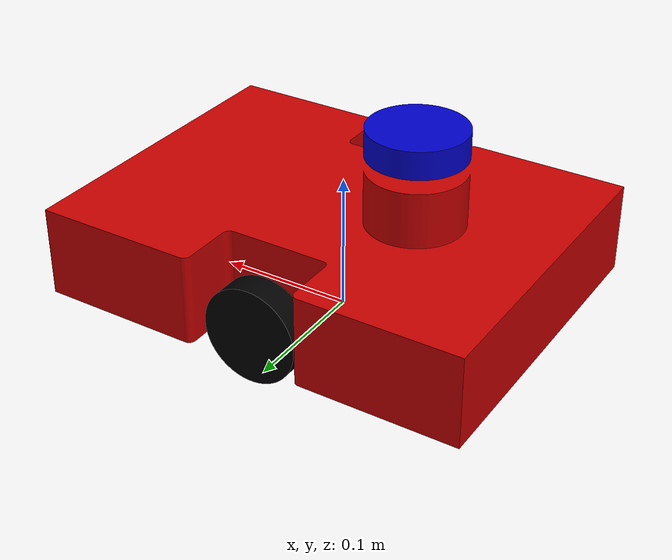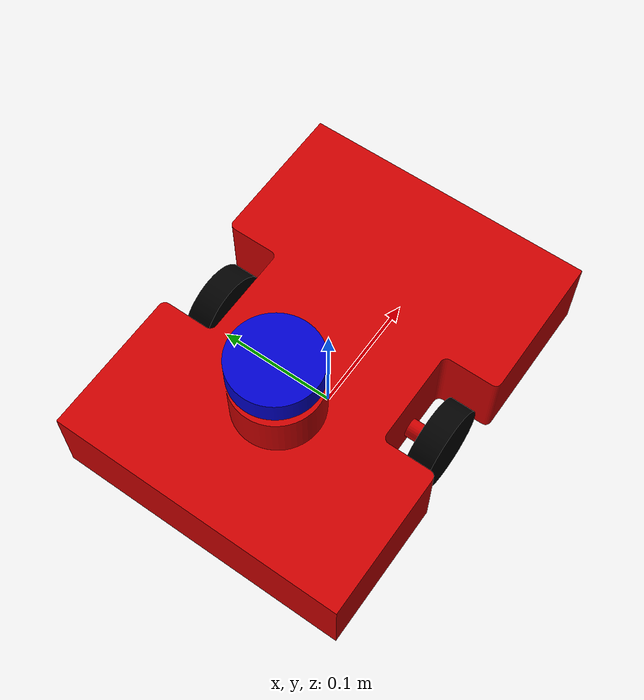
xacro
<?xml version="1.0"?>
<robot name="articubot_two" xmlns:xacro="http://www.ros.org/wiki/xacro">

  <xacro:include filename="$(find articubot_two_description)/urdf/materials.xacro"/>
  <xacro:include filename="$(find articubot_two_description)/urdf/articubot_two.trans"/>
  <xacro:include filename="$(find articubot_two_description)/urdf/articubot_two.gazebo"/>

  <!-- BASE LINK -->
  <link name="base_link">
    <inertial>
      <origin xyz="0.002232 0.002232 0.063" rpy="0 0 0"/>
      <mass value="1.0"/>
      <inertia ixx="0.004" iyy="0.008" izz="0.010" ixy="0.0" iyz="0.0" ixz="0.0"/>
    </inertial>
    <visual>
      <origin xyz="0 0 0" rpy="0 0 0"/>
      <geometry>
        <mesh filename="file://$(find articubot_two_description)/meshes/base_link.stl" scale="0.001 0.001 0.001"/>
      </geometry>
      <material name="red"/>
    </visual>
    <collision>
      <origin xyz="0 0 0" rpy="0 0 0"/>
      <geometry>
        <mesh filename="file://$(find articubot_two_description)/meshes/base_link.stl" scale="0.001 0.001 0.001"/>
      </geometry>
    </collision>
  </link>

  <!-- LEFT WHEEL -->
  <link name="left_wheel_1">
    <inertial>
      <origin xyz="0.0 0.0 0.0" rpy="0 0 0"/>
      <mass value="0.1"/>
      <inertia ixx="0.00003" iyy="0.00005" izz="0.00003" ixy="0.0" iyz="0.0" ixz="0.0"/>
    </inertial>
    <visual>
      <origin xyz="-0.002232 -0.102232 -0.035" rpy="0 0 0"/>
      <geometry>
        <mesh filename="file://$(find articubot_two_description)/meshes/left_wheel_1.stl" scale="0.001 0.001 0.001"/>
      </geometry>
      <material name="black"/>
    </visual>
    <collision>
      <origin xyz="0.0 0.0 0.0" rpy="1.5707 0.0 0.0"/>
      <geometry>
        <cylinder radius="0.035" length="0.025"/>
      </geometry>
    </collision>
  </link>

  <!-- RIGHT WHEEL -->
  <link name="right_wheel_1">
    <inertial>
      <origin xyz="0.0 0.0 0.0" rpy="0 0 0"/>
      <mass value="0.1"/>
      <inertia ixx="0.00003" iyy="0.00005" izz="0.00003" ixy="0.0" iyz="0.0" ixz="0.0"/>
    </inertial>
    <visual>
      <origin xyz="-0.002232 0.097768 -0.035" rpy="0 0 0"/>
      <geometry>
        <mesh filename="file://$(find articubot_two_description)/meshes/right_wheel_1.stl" scale="0.001 0.001 0.001"/>
      </geometry>
      <material name="black"/>
    </visual>
    <collision>
      <origin xyz="0.0 0.0 0.0" rpy="1.5707 0.0 0.0"/>
      <geometry>
        <cylinder radius="0.035" length="0.025"/>
      </geometry>
    </collision>
  </link>

  <!-- LIDAR LINK -->
  <link name="lidar_joint_1">
    <inertial>
      <origin xyz="0.0 0.0 0.0" rpy="0 0 0"/>
      <mass value="0.05"/>
      <inertia ixx="0.000010" iyy="0.000010" izz="0.000018" ixy="0.0" iyz="0.0" ixz="0.0"/>
    </inertial>
    <visual>
      <origin xyz="0.057768 -0.002232 -0.136" rpy="0 0 0"/>
      <geometry>
        <mesh filename="file://$(find articubot_two_description)/meshes/lidar_joint_1.stl" scale="0.001 0.001 0.001"/>
      </geometry>
      <material name="blue"/>
    </visual>
    <collision>
      <origin xyz="0.057768 -0.002232 -0.136" rpy="0 0 0"/>
      <geometry>
        <mesh filename="file://$(find articubot_two_description)/meshes/lidar_joint_1.stl" scale="0.001 0.001 0.001"/>
      </geometry>
    </collision>
  </link>

  <!-- CAMERA LINK -->
  <link name="camera_joint_1">
    <inertial>
      <origin xyz="0.0 0.0 0.0" rpy="0 0 0"/>
      <mass value="0.02"/>
      <inertia ixx="2e-06" iyy="1e-06" izz="1e-06" ixy="0.0" iyz="0.0" ixz="0.0"/>
    </inertial>
    <visual>
      <origin xyz="-0.164232 -0.002232 -0.053" rpy="0 0 0"/>
      <geometry>
        <mesh filename="file://$(find articubot_two_description)/meshes/camera_joint_1.stl" scale="0.001 0.001 0.001"/>
      </geometry>
      <material name="silver"/>
    </visual>
    <collision>
      <origin xyz="-0.164232 -0.002232 -0.053" rpy="0 0 0"/>
      <geometry>
        <mesh filename="file://$(find articubot_two_description)/meshes/camera_joint_1.stl" scale="0.001 0.001 0.001"/>
      </geometry>
    </collision>
  </link>

  <!-- IMU LINK -->
  <link name="imu_link">
    <inertial>
      <origin xyz="0.0 0.0 0.0" rpy="0 0 0"/>
      <mass value="0.01"/>
      <inertia ixx="1e-06" iyy="1e-06" izz="1e-06" ixy="0.0" iyz="0.0" ixz="0.0"/>
    </inertial>
    <visual>
      <origin xyz="0 0 0" rpy="0 0 0"/>
      <geometry>
        <box size="0.02 0.02 0.02"/>
      </geometry>
      <material name="white"/>
    </visual>
    <collision>
      <origin xyz="0 0 0" rpy="0 0 0"/>
      <geometry>
        <box size="0.02 0.02 0.02"/>
      </geometry>
    </collision>
  </link>

  <!-- JOINTS -->
  <joint name="left_wheel_joint" type="continuous">
    <origin xyz="0.002232 0.102232 0.035" rpy="0 0 0"/>
    <parent link="base_link"/>
    <child link="left_wheel_1"/>
    <axis xyz="0.0 1.0 0.0"/>
    <dynamics damping="0.01" friction="0.01"/>
  </joint>

  <joint name="right_wheel_joint" type="continuous">
    <origin xyz="0.002232 -0.097768 0.035" rpy="0 0 0"/>
    <parent link="base_link"/>
    <child link="right_wheel_1"/>
    <axis xyz="0.0 1.0 0.0"/>
    <dynamics damping="0.01" friction="0.01"/>
  </joint>

  <joint name="lidar_joint" type="fixed">
    <origin xyz="-0.057768 0.002232 0.146" rpy="0 0 0"/>
    <parent link="base_link"/>
    <child link="lidar_joint_1"/>
  </joint>

  <joint name="camera_joint" type="fixed">
    <origin xyz="0.164232 0.002232 0.053" rpy="0 0 0"/>
    <parent link="base_link"/>
    <child link="camera_joint_1"/>
  </joint>

  <joint name="imu_joint" type="fixed">
    <origin xyz="0.0 0.0 0.05" rpy="0 0 0"/>
    <parent link="base_link"/>
    <child link="imu_link"/>
  </joint>

  <!-- ROS2 CONTROL -->
  <ros2_control name="ArticubotSystem" type="system">
    <hardware>
      <plugin>gazebo_ros2_control/GazeboSystem</plugin>
    </hardware>
    <joint name="left_wheel_joint">
      <command_interface name="velocity"/>
      <state_interface name="velocity"/>
      <state_interface name="position"/>
    </joint>
    <joint name="right_wheel_joint">
      <command_interface name="velocity"/>
      <state_interface name="velocity"/>
      <state_interface name="position"/>
    </joint>
  </ros2_control>

</robot>

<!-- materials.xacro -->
<robot xmlns:xacro="http://www.ros.org/wiki/xacro">

  <material name="red">
    <color rgba="0.8 0.0 0.0 1.0"/>
  </material>

  <material name="black">
    <color rgba="0.0 0.0 0.0 1.0"/>
  </material>

  <material name="blue">
    <color rgba="0.0 0.0 0.8 1.0"/>
  </material>

  <material name="silver">
    <color rgba="0.7 0.7 0.7 1.0"/>
  </material>

  <material name="white">
    <color rgba="1.0 1.0 1.0 1.0"/>
  </material>

</robot>
